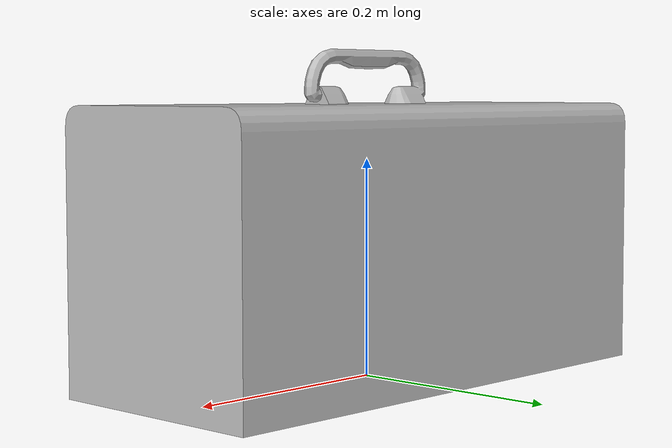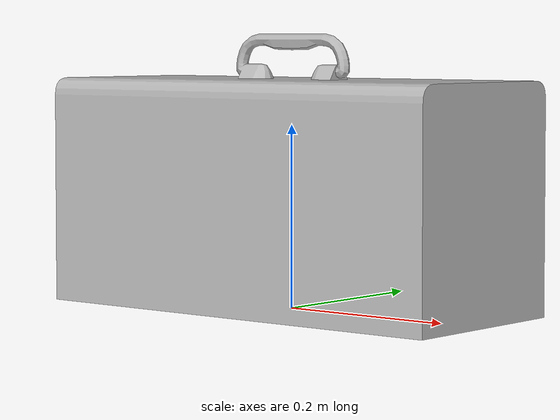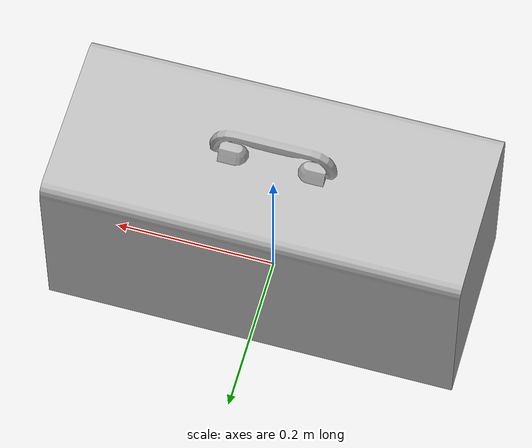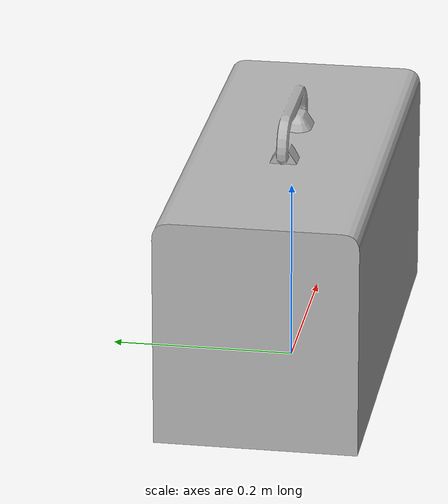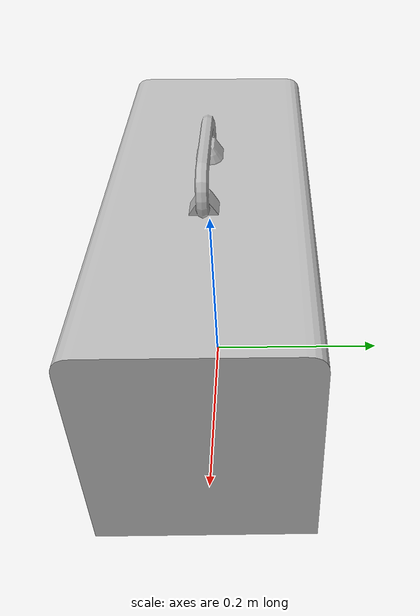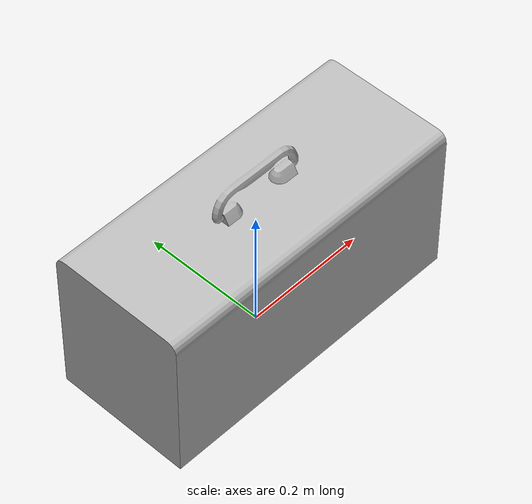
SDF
<?xml version='1.0' ?>
<sdf version='1.6'>
  <model name='toolbox'>
    <static>true</static>
    <link name='link'>
      <collision name='collision'>
        <geometry>
          <mesh>
            <uri>model://models/toolbox/meshes/Toolbox.dae</uri>
          </mesh>
        </geometry>
      </collision>
      <visual name='visual'>
        <geometry>
          <mesh>
            <uri>model://models/toolbox/meshes/Toolbox.dae</uri>
          </mesh>
        </geometry>
      </visual>
    </link>
  </model>
</sdf>
